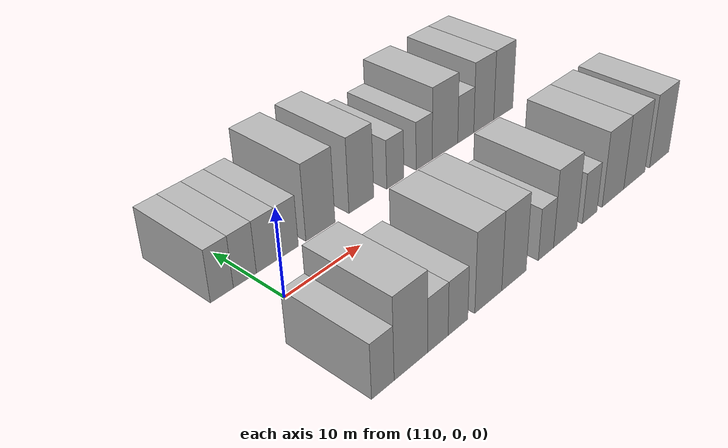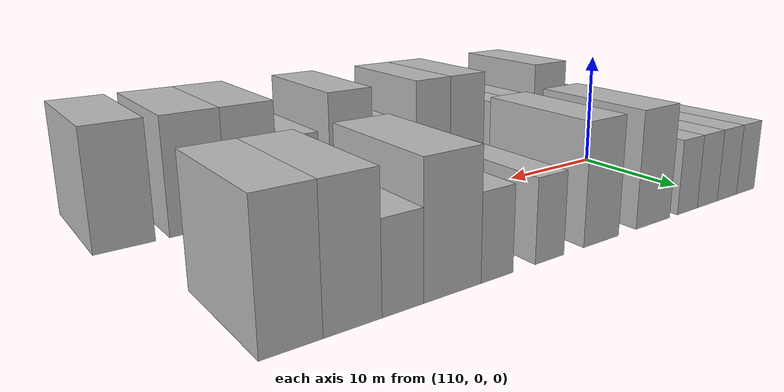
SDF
<sdf version="1.6">
 <world name="default">
  <model name="building_25">
   <static>1</static>
   <pose>106.5121 9.5000 0 0.000000 0.000000 1.570796</pose>
   <link name="link">
    <pose>0 0 3.00 0 0 0</pose>
    <collision name="collision"><geometry><box><size>10.0000 2.6872 6.0000</size></box></geometry></collision>
    <visual name="visual">
     <cast_shadows>0</cast_shadows>
     <geometry><box><size>10.0000 2.6872 6.0000</size></box></geometry>
     <material>
      <script>
       <uri>model://HANNAS_wall/materials/scripts</uri>
       <uri>model://HANNAS_wall/materials/textures</uri>
       <name>vrc/HANNAS_wall</name>
      </script>
     </material>
    </visual>
   </link>
  </model>
  <model name="building_26">
   <static>1</static>
   <pose>109.2533 9.5000 0 0.000000 0.000000 1.570796</pose>
   <link name="link">
    <pose>0 0 3.00 0 0 0</pose>
    <collision name="collision"><geometry><box><size>10.0000 2.7952 6.0000</size></box></geometry></collision>
    <visual name="visual">
     <cast_shadows>0</cast_shadows>
     <geometry><box><size>10.0000 2.7952 6.0000</size></box></geometry>
     <material>
      <script>
       <uri>model://HANNAS_wall/materials/scripts</uri>
       <uri>model://HANNAS_wall/materials/textures</uri>
       <name>vrc/HANNAS_wall</name>
      </script>
     </material>
    </visual>
   </link>
  </model>
  <model name="building_27">
   <static>1</static>
   <pose>112.0326 9.5000 0 0.000000 0.000000 1.570796</pose>
   <link name="link">
    <pose>0 0 3.00 0 0 0</pose>
    <collision name="collision"><geometry><box><size>10.0000 2.7635 6.0000</size></box></geometry></collision>
    <visual name="visual">
     <cast_shadows>0</cast_shadows>
     <geometry><box><size>10.0000 2.7635 6.0000</size></box></geometry>
     <material>
      <script>
       <uri>model://HANNAS_wall/materials/scripts</uri>
       <uri>model://HANNAS_wall/materials/textures</uri>
       <name>vrc/HANNAS_wall</name>
      </script>
     </material>
    </visual>
   </link>
  </model>
  <model name="building_28">
   <static>1</static>
   <pose>114.7255 9.5000 0 0.000000 0.000000 1.570796</pose>
   <link name="link">
    <pose>0 0 3.00 0 0 0</pose>
    <collision name="collision"><geometry><box><size>10.0000 2.6223 6.0000</size></box></geometry></collision>
    <visual name="visual">
     <cast_shadows>0</cast_shadows>
     <geometry><box><size>10.0000 2.6223 6.0000</size></box></geometry>
     <material>
      <script>
       <uri>model://HANNAS_wall/materials/scripts</uri>
       <uri>model://HANNAS_wall/materials/textures</uri>
       <name>vrc/HANNAS_wall</name>
      </script>
     </material>
    </visual>
   </link>
  </model>
  <model name="building_29">
   <static>1</static>
   <pose>119.0576 9.5000 0 0.000000 0.000000 1.570796</pose>
   <link name="link">
    <pose>0 0 4.50 0 0 0</pose>
    <collision name="collision"><geometry><box><size>10.0000 4.0419 9.0000</size></box></geometry></collision>
    <visual name="visual">
     <cast_shadows>0</cast_shadows>
     <geometry><box><size>10.0000 4.0419 9.0000</size></box></geometry>
     <material>
      <script>
       <uri>model://HANNAS_wall/materials/scripts</uri>
       <uri>model://HANNAS_wall/materials/textures</uri>
       <name>vrc/HANNAS_wall</name>
      </script>
     </material>
    </visual>
   </link>
  </model>
  <model name="building_30">
   <static>1</static>
   <pose>124.9301 9.5000 0 0.000000 0.000000 1.570796</pose>
   <link name="link">
    <pose>0 0 4.50 0 0 0</pose>
    <collision name="collision"><geometry><box><size>10.0000 3.7030 9.0000</size></box></geometry></collision>
    <visual name="visual">
     <cast_shadows>0</cast_shadows>
     <geometry><box><size>10.0000 3.7030 9.0000</size></box></geometry>
     <material>
      <script>
       <uri>model://HANNAS_wall/materials/scripts</uri>
       <uri>model://HANNAS_wall/materials/textures</uri>
       <name>vrc/HANNAS_wall</name>
      </script>
     </material>
    </visual>
   </link>
  </model>
  <model name="building_31">
   <static>1</static>
   <pose>130.1375 9.5000 0 0.000000 0.000000 1.570796</pose>
   <link name="link">
    <pose>0 0 3.00 0 0 0</pose>
    <collision name="collision"><geometry><box><size>10.0000 2.7120 6.0000</size></box></geometry></collision>
    <visual name="visual">
     <cast_shadows>0</cast_shadows>
     <geometry><box><size>10.0000 2.7120 6.0000</size></box></geometry>
     <material>
      <script>
       <uri>model://HANNAS_wall/materials/scripts</uri>
       <uri>model://HANNAS_wall/materials/textures</uri>
       <name>vrc/HANNAS_wall</name>
      </script>
     </material>
    </visual>
   </link>
  </model>
  <model name="building_32">
   <static>1</static>
   <pose>134.8519 9.5000 0 0.000000 0.000000 1.570796</pose>
   <link name="link">
    <pose>0 0 3.00 0 0 0</pose>
    <collision name="collision"><geometry><box><size>10.0000 2.7168 6.0000</size></box></geometry></collision>
    <visual name="visual">
     <cast_shadows>0</cast_shadows>
     <geometry><box><size>10.0000 2.7168 6.0000</size></box></geometry>
     <material>
      <script>
       <uri>model://HANNAS_wall/materials/scripts</uri>
       <uri>model://HANNAS_wall/materials/textures</uri>
       <name>vrc/HANNAS_wall</name>
      </script>
     </material>
    </visual>
   </link>
  </model>
  <model name="building_33">
   <static>1</static>
   <pose>138.4363 9.5000 0 0.000000 0.000000 1.570796</pose>
   <link name="link">
    <pose>0 0 4.50 0 0 0</pose>
    <collision name="collision"><geometry><box><size>10.0000 4.4521 9.0000</size></box></geometry></collision>
    <visual name="visual">
     <cast_shadows>0</cast_shadows>
     <geometry><box><size>10.0000 4.4521 9.0000</size></box></geometry>
     <material>
      <script>
       <uri>model://HANNAS_wall/materials/scripts</uri>
       <uri>model://HANNAS_wall/materials/textures</uri>
       <name>vrc/HANNAS_wall</name>
      </script>
     </material>
    </visual>
   </link>
  </model>
  <model name="building_34">
   <static>1</static>
   <pose>142.1245 9.5000 0 0.000000 0.000000 1.570796</pose>
   <link name="link">
    <pose>0 0 3.00 0 0 0</pose>
    <collision name="collision"><geometry><box><size>10.0000 2.9242 6.0000</size></box></geometry></collision>
    <visual name="visual">
     <cast_shadows>0</cast_shadows>
     <geometry><box><size>10.0000 2.9242 6.0000</size></box></geometry>
     <material>
      <script>
       <uri>model://HANNAS_wall/materials/scripts</uri>
       <uri>model://HANNAS_wall/materials/textures</uri>
       <name>vrc/HANNAS_wall</name>
      </script>
     </material>
    </visual>
   </link>
  </model>
  <model name="building_35">
   <static>1</static>
   <pose>145.4801 9.5000 0 0.000000 0.000000 1.570796</pose>
   <link name="link">
    <pose>0 0 4.50 0 0 0</pose>
    <collision name="collision"><geometry><box><size>10.0000 3.7871 9.0000</size></box></geometry></collision>
    <visual name="visual">
     <cast_shadows>0</cast_shadows>
     <geometry><box><size>10.0000 3.7871 9.0000</size></box></geometry>
     <material>
      <script>
       <uri>model://HANNAS_wall/materials/scripts</uri>
       <uri>model://HANNAS_wall/materials/textures</uri>
       <name>vrc/HANNAS_wall</name>
      </script>
     </material>
    </visual>
   </link>
  </model>
  <model name="building_36">
   <static>1</static>
   <pose>149.2452 9.5000 0 0.000000 0.000000 1.570796</pose>
   <link name="link">
    <pose>0 0 4.50 0 0 0</pose>
    <collision name="collision"><geometry><box><size>10.0000 3.7432 9.0000</size></box></geometry></collision>
    <visual name="visual">
     <cast_shadows>0</cast_shadows>
     <geometry><box><size>10.0000 3.7432 9.0000</size></box></geometry>
     <material>
      <script>
       <uri>model://HANNAS_wall/materials/scripts</uri>
       <uri>model://HANNAS_wall/materials/textures</uri>
       <name>vrc/HANNAS_wall</name>
      </script>
     </material>
    </visual>
   </link>
  </model>
  <model name="building_75">
   <static>1</static>
   <pose>107.3793 -9.5000 0 0.000000 0.000000 1.570796</pose>
   <link name="link">
    <pose>0 0 3.00 0 0 0</pose>
    <collision name="collision"><geometry><box><size>10.0000 2.7165 6.0000</size></box></geometry></collision>
    <visual name="visual">
     <cast_shadows>0</cast_shadows>
     <geometry><box><size>10.0000 2.7165 6.0000</size></box></geometry>
     <material>
      <script>
       <uri>model://HANNAS_wall/materials/scripts</uri>
       <uri>model://HANNAS_wall/materials/textures</uri>
       <name>vrc/HANNAS_wall</name>
      </script>
     </material>
    </visual>
   </link>
  </model>
  <model name="building_76">
   <static>1</static>
   <pose>110.8692 -9.5000 0 0.000000 0.000000 1.570796</pose>
   <link name="link">
    <pose>0 0 4.50 0 0 0</pose>
    <collision name="collision"><geometry><box><size>10.0000 4.2633 9.0000</size></box></geometry></collision>
    <visual name="visual">
     <cast_shadows>0</cast_shadows>
     <geometry><box><size>10.0000 4.2633 9.0000</size></box></geometry>
     <material>
      <script>
       <uri>model://HANNAS_wall/materials/scripts</uri>
       <uri>model://HANNAS_wall/materials/textures</uri>
       <name>vrc/HANNAS_wall</name>
      </script>
     </material>
    </visual>
   </link>
  </model>
  <model name="building_77">
   <static>1</static>
   <pose>114.3655 -9.5000 0 0.000000 0.000000 1.570796</pose>
   <link name="link">
    <pose>0 0 3.00 0 0 0</pose>
    <collision name="collision"><geometry><box><size>10.0000 2.7294 6.0000</size></box></geometry></collision>
    <visual name="visual">
     <cast_shadows>0</cast_shadows>
     <geometry><box><size>10.0000 2.7294 6.0000</size></box></geometry>
     <material>
      <script>
       <uri>model://HANNAS_wall/materials/scripts</uri>
       <uri>model://HANNAS_wall/materials/textures</uri>
       <name>vrc/HANNAS_wall</name>
      </script>
     </material>
    </visual>
   </link>
  </model>
  <model name="building_78">
   <static>1</static>
   <pose>117.0975 -9.5000 0 0.000000 0.000000 1.570796</pose>
   <link name="link">
    <pose>0 0 3.00 0 0 0</pose>
    <collision name="collision"><geometry><box><size>10.0000 2.7346 6.0000</size></box></geometry></collision>
    <visual name="visual">
     <cast_shadows>0</cast_shadows>
     <geometry><box><size>10.0000 2.7346 6.0000</size></box></geometry>
     <material>
      <script>
       <uri>model://HANNAS_wall/materials/scripts</uri>
       <uri>model://HANNAS_wall/materials/textures</uri>
       <name>vrc/HANNAS_wall</name>
      </script>
     </material>
    </visual>
   </link>
  </model>
  <model name="building_79">
   <static>1</static>
   <pose>121.4589 -9.5000 0 0.000000 0.000000 1.570796</pose>
   <link name="link">
    <pose>0 0 4.50 0 0 0</pose>
    <collision name="collision"><geometry><box><size>10.0000 3.9882 9.0000</size></box></geometry></collision>
    <visual name="visual">
     <cast_shadows>0</cast_shadows>
     <geometry><box><size>10.0000 3.9882 9.0000</size></box></geometry>
     <material>
      <script>
       <uri>model://HANNAS_wall/materials/scripts</uri>
       <uri>model://HANNAS_wall/materials/textures</uri>
       <name>vrc/HANNAS_wall</name>
      </script>
     </material>
    </visual>
   </link>
  </model>
  <model name="building_80">
   <static>1</static>
   <pose>125.3624 -9.5000 0 0.000000 0.000000 1.570796</pose>
   <link name="link">
    <pose>0 0 4.50 0 0 0</pose>
    <collision name="collision"><geometry><box><size>10.0000 3.8188 9.0000</size></box></geometry></collision>
    <visual name="visual">
     <cast_shadows>0</cast_shadows>
     <geometry><box><size>10.0000 3.8188 9.0000</size></box></geometry>
     <material>
      <script>
       <uri>model://HANNAS_wall/materials/scripts</uri>
       <uri>model://HANNAS_wall/materials/textures</uri>
       <name>vrc/HANNAS_wall</name>
      </script>
     </material>
    </visual>
   </link>
  </model>
  <model name="building_81">
   <static>1</static>
   <pose>130.5413 -9.5000 0 0.000000 0.000000 1.570796</pose>
   <link name="link">
    <pose>0 0 3.00 0 0 0</pose>
    <collision name="collision"><geometry><box><size>10.0000 2.5390 6.0000</size></box></geometry></collision>
    <visual name="visual">
     <cast_shadows>0</cast_shadows>
     <geometry><box><size>10.0000 2.5390 6.0000</size></box></geometry>
     <material>
      <script>
       <uri>model://HANNAS_wall/materials/scripts</uri>
       <uri>model://HANNAS_wall/materials/textures</uri>
       <name>vrc/HANNAS_wall</name>
      </script>
     </material>
    </visual>
   </link>
  </model>
  <model name="building_82">
   <static>1</static>
   <pose>133.8650 -9.5000 0 0.000000 0.000000 1.570796</pose>
   <link name="link">
    <pose>0 0 4.50 0 0 0</pose>
    <collision name="collision"><geometry><box><size>10.0000 4.1084 9.0000</size></box></geometry></collision>
    <visual name="visual">
     <cast_shadows>0</cast_shadows>
     <geometry><box><size>10.0000 4.1084 9.0000</size></box></geometry>
     <material>
      <script>
       <uri>model://HANNAS_wall/materials/scripts</uri>
       <uri>model://HANNAS_wall/materials/textures</uri>
       <name>vrc/HANNAS_wall</name>
      </script>
     </material>
    </visual>
   </link>
  </model>
  <model name="building_83">
   <static>1</static>
   <pose>138.2683 -9.5000 0 0.000000 0.000000 1.570796</pose>
   <link name="link">
    <pose>0 0 3.00 0 0 0</pose>
    <collision name="collision"><geometry><box><size>10.0000 2.6982 6.0000</size></box></geometry></collision>
    <visual name="visual">
     <cast_shadows>0</cast_shadows>
     <geometry><box><size>10.0000 2.6982 6.0000</size></box></geometry>
     <material>
      <script>
       <uri>model://HANNAS_wall/materials/scripts</uri>
       <uri>model://HANNAS_wall/materials/textures</uri>
       <name>vrc/HANNAS_wall</name>
      </script>
     </material>
    </visual>
   </link>
  </model>
  <model name="building_84">
   <static>1</static>
   <pose>142.7337 -9.5000 0 0.000000 0.000000 1.570796</pose>
   <link name="link">
    <pose>0 0 4.50 0 0 0</pose>
    <collision name="collision"><geometry><box><size>10.0000 4.2327 9.0000</size></box></geometry></collision>
    <visual name="visual">
     <cast_shadows>0</cast_shadows>
     <geometry><box><size>10.0000 4.2327 9.0000</size></box></geometry>
     <material>
      <script>
       <uri>model://HANNAS_wall/materials/scripts</uri>
       <uri>model://HANNAS_wall/materials/textures</uri>
       <name>vrc/HANNAS_wall</name>
      </script>
     </material>
    </visual>
   </link>
  </model>
  <model name="building_85">
   <static>1</static>
   <pose>147.0304 -9.5000 0 0.000000 0.000000 1.570796</pose>
   <link name="link">
    <pose>0 0 4.50 0 0 0</pose>
    <collision name="collision"><geometry><box><size>10.0000 4.3606 9.0000</size></box></geometry></collision>
    <visual name="visual">
     <cast_shadows>0</cast_shadows>
     <geometry><box><size>10.0000 4.3606 9.0000</size></box></geometry>
     <material>
      <script>
       <uri>model://HANNAS_wall/materials/scripts</uri>
       <uri>model://HANNAS_wall/materials/textures</uri>
       <name>vrc/HANNAS_wall</name>
      </script>
     </material>
    </visual>
   </link>
  </model>
  <model name="building_86">
   <static>1</static>
   <pose>152.3359 -9.5000 0 0.000000 0.000000 1.570796</pose>
   <link name="link">
    <pose>0 0 4.50 0 0 0</pose>
    <collision name="collision"><geometry><box><size>10.0000 4.2503 9.0000</size></box></geometry></collision>
    <visual name="visual">
     <cast_shadows>0</cast_shadows>
     <geometry><box><size>10.0000 4.2503 9.0000</size></box></geometry>
     <material>
      <script>
       <uri>model://HANNAS_wall/materials/scripts</uri>
       <uri>model://HANNAS_wall/materials/textures</uri>
       <name>vrc/HANNAS_wall</name>
      </script>
     </material>
    </visual>
   </link>
  </model>
 </world>
</sdf>
